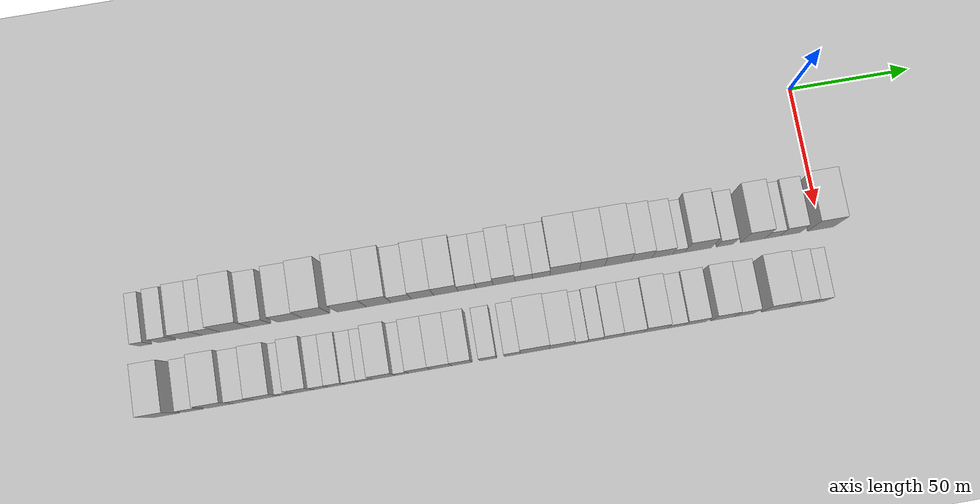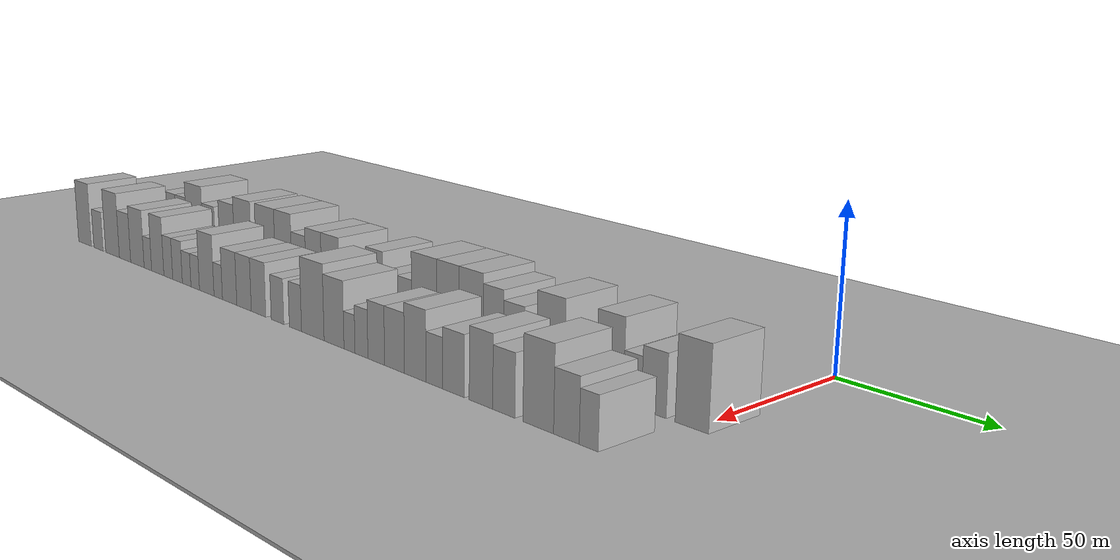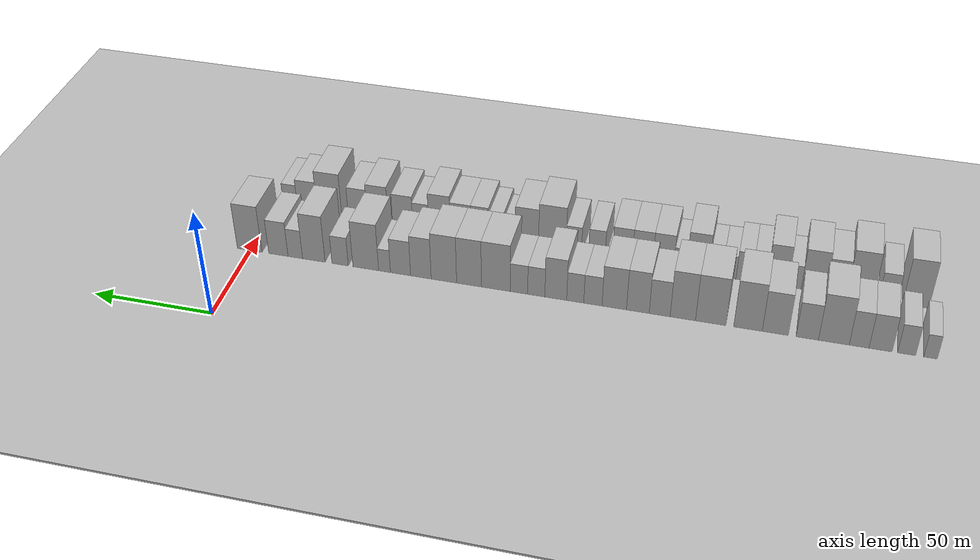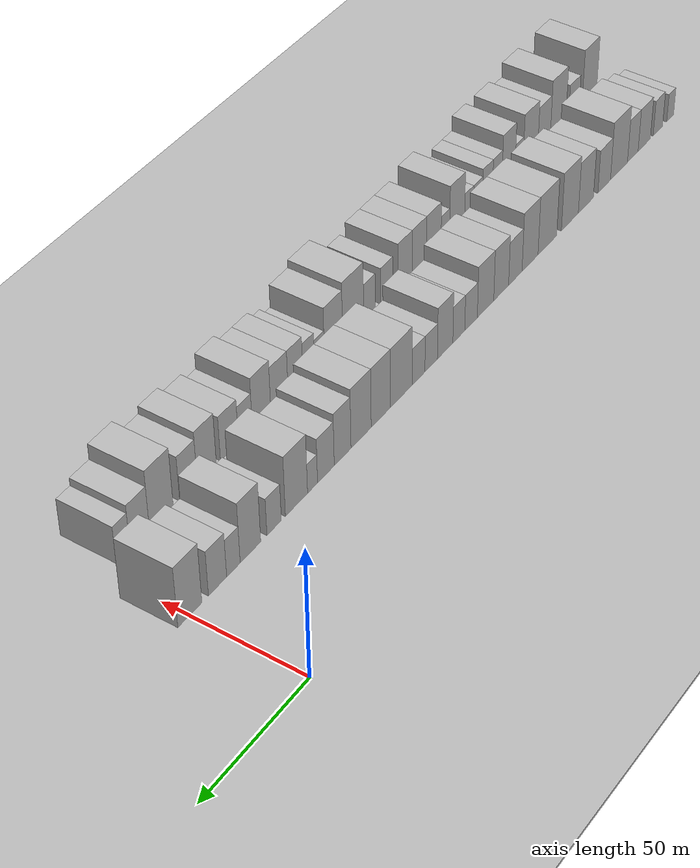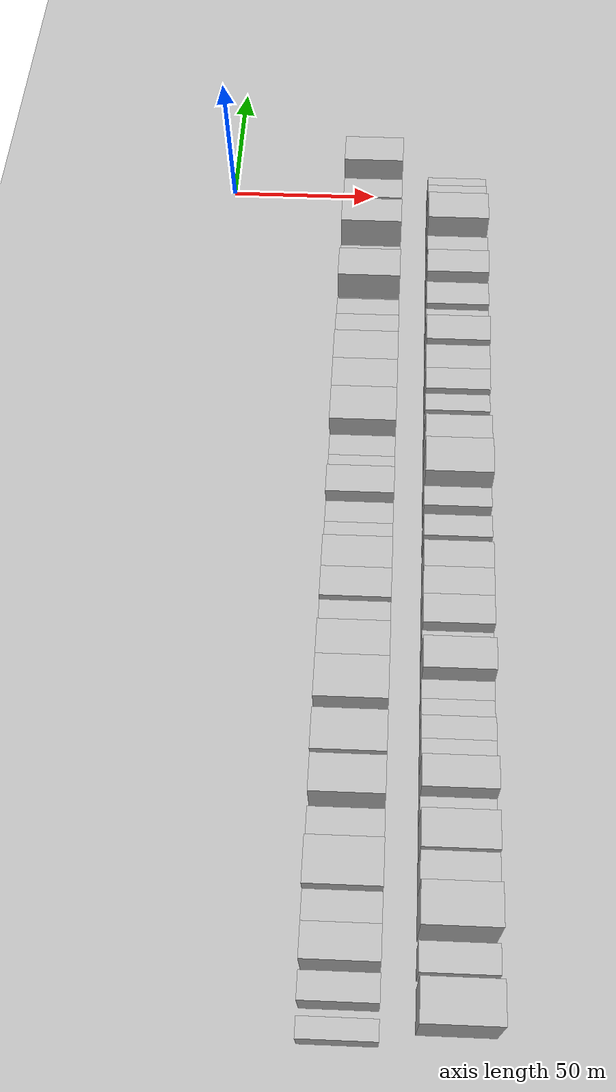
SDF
<sdf version="1.6">
 <world name="default">
  <include><name>ground_plane_1</name><uri>model://HANNAS_ground_plane</uri></include>
  <include>
   <name>ground_plane_2</name>
   <uri>model://HANNAS_ground_plane</uri>
   <pose>100 0 0  0 0 0</pose>
  </include>
  <model name="building_1">
   <static>1</static>
   <pose>50.0000 -275.5095 0 0.000000 0.000000 0.000000</pose>
   <link name="link">
    <pose>0 0 6.00 0 0 0</pose>
    <collision name="collision"><geometry><box><size>20.0000 4.9810 12.0000</size></box></geometry></collision>
    <visual name="visual">
     <cast_shadows>0</cast_shadows>
     <geometry><box><size>20.0000 4.9810 12.0000</size></box></geometry>
     <material>
      <script>
       <uri>model://HANNAS_wall/materials/scripts</uri>
       <uri>model://HANNAS_wall/materials/textures</uri>
       <name>vrc/HANNAS_wall</name>
      </script>
     </material>
    </visual>
   </link>
  </model>
  <model name="building_2">
   <static>1</static>
   <pose>50.0000 -266.6562 0 0.000000 0.000000 0.000000</pose>
   <link name="link">
    <pose>0 0 7.50 0 0 0</pose>
    <collision name="collision"><geometry><box><size>20.0000 6.7257 15.0000</size></box></geometry></collision>
    <visual name="visual">
     <cast_shadows>0</cast_shadows>
     <geometry><box><size>20.0000 6.7257 15.0000</size></box></geometry>
     <material>
      <script>
       <uri>model://HANNAS_wall/materials/scripts</uri>
       <uri>model://HANNAS_wall/materials/textures</uri>
       <name>vrc/HANNAS_wall</name>
      </script>
     </material>
    </visual>
   </link>
  </model>
  <model name="building_3">
   <static>1</static>
   <pose>50.0000 -256.9734 0 0.000000 0.000000 0.000000</pose>
   <link name="link">
    <pose>0 0 9.00 0 0 0</pose>
    <collision name="collision"><geometry><box><size>20.0000 8.6398 18.0000</size></box></geometry></collision>
    <visual name="visual">
     <cast_shadows>0</cast_shadows>
     <geometry><box><size>20.0000 8.6398 18.0000</size></box></geometry>
     <material>
      <script>
       <uri>model://HANNAS_wall/materials/scripts</uri>
       <uri>model://HANNAS_wall/materials/textures</uri>
       <name>vrc/HANNAS_wall</name>
      </script>
     </material>
    </visual>
   </link>
  </model>
  <model name="building_4">
   <static>1</static>
   <pose>50.0000 -248.9423 0 0.000000 0.000000 0.000000</pose>
   <link name="link">
    <pose>0 0 9.00 0 0 0</pose>
    <collision name="collision"><geometry><box><size>20.0000 7.4225 18.0000</size></box></geometry></collision>
    <visual name="visual">
     <cast_shadows>0</cast_shadows>
     <geometry><box><size>20.0000 7.4225 18.0000</size></box></geometry>
     <material>
      <script>
       <uri>model://HANNAS_wall/materials/scripts</uri>
       <uri>model://HANNAS_wall/materials/textures</uri>
       <name>vrc/HANNAS_wall</name>
      </script>
     </material>
    </visual>
   </link>
  </model>
  <model name="building_5">
   <static>1</static>
   <pose>50.0000 -239.3968 0 0.000000 0.000000 0.000000</pose>
   <link name="link">
    <pose>0 0 12.00 0 0 0</pose>
    <collision name="collision"><geometry><box><size>20.0000 11.6684 24.0000</size></box></geometry></collision>
    <visual name="visual">
     <cast_shadows>0</cast_shadows>
     <geometry><box><size>20.0000 11.6684 24.0000</size></box></geometry>
     <material>
      <script>
       <uri>model://HANNAS_wall/materials/scripts</uri>
       <uri>model://HANNAS_wall/materials/textures</uri>
       <name>vrc/HANNAS_wall</name>
      </script>
     </material>
    </visual>
   </link>
  </model>
  <model name="building_6">
   <static>1</static>
   <pose>50.0000 -229.3155 0 0.000000 0.000000 0.000000</pose>
   <link name="link">
    <pose>0 0 9.00 0 0 0</pose>
    <collision name="collision"><geometry><box><size>20.0000 8.4943 18.0000</size></box></geometry></collision>
    <visual name="visual">
     <cast_shadows>0</cast_shadows>
     <geometry><box><size>20.0000 8.4943 18.0000</size></box></geometry>
     <material>
      <script>
       <uri>model://HANNAS_wall/materials/scripts</uri>
       <uri>model://HANNAS_wall/materials/textures</uri>
       <name>vrc/HANNAS_wall</name>
      </script>
     </material>
    </visual>
   </link>
  </model>
  <model name="building_7">
   <static>1</static>
   <pose>50.0000 -217.0728 0 0.000000 0.000000 0.000000</pose>
   <link name="link">
    <pose>0 0 10.50 0 0 0</pose>
    <collision name="collision"><geometry><box><size>20.0000 9.9910 21.0000</size></box></geometry></collision>
    <visual name="visual">
     <cast_shadows>0</cast_shadows>
     <geometry><box><size>20.0000 9.9910 21.0000</size></box></geometry>
     <material>
      <script>
       <uri>model://HANNAS_wall/materials/scripts</uri>
       <uri>model://HANNAS_wall/materials/textures</uri>
       <name>vrc/HANNAS_wall</name>
      </script>
     </material>
    </visual>
   </link>
  </model>
  <model name="building_8">
   <static>1</static>
   <pose>50.0000 -206.5521 0 0.000000 0.000000 0.000000</pose>
   <link name="link">
    <pose>0 0 12.00 0 0 0</pose>
    <collision name="collision"><geometry><box><size>20.0000 11.0504 24.0000</size></box></geometry></collision>
    <visual name="visual">
     <cast_shadows>0</cast_shadows>
     <geometry><box><size>20.0000 11.0504 24.0000</size></box></geometry>
     <material>
      <script>
       <uri>model://HANNAS_wall/materials/scripts</uri>
       <uri>model://HANNAS_wall/materials/textures</uri>
       <name>vrc/HANNAS_wall</name>
      </script>
     </material>
    </visual>
   </link>
  </model>
  <model name="building_9">
   <static>1</static>
   <pose>50.0000 -192.0702 0 0.000000 0.000000 0.000000</pose>
   <link name="link">
    <pose>0 0 12.00 0 0 0</pose>
    <collision name="collision"><geometry><box><size>20.0000 11.9134 24.0000</size></box></geometry></collision>
    <visual name="visual">
     <cast_shadows>0</cast_shadows>
     <geometry><box><size>20.0000 11.9134 24.0000</size></box></geometry>
     <material>
      <script>
       <uri>model://HANNAS_wall/materials/scripts</uri>
       <uri>model://HANNAS_wall/materials/textures</uri>
       <name>vrc/HANNAS_wall</name>
      </script>
     </material>
    </visual>
   </link>
  </model>
  <model name="building_10">
   <static>1</static>
   <pose>50.0000 -181.1173 0 0.000000 0.000000 0.000000</pose>
   <link name="link">
    <pose>0 0 12.00 0 0 0</pose>
    <collision name="collision"><geometry><box><size>20.0000 9.9924 24.0000</size></box></geometry></collision>
    <visual name="visual">
     <cast_shadows>0</cast_shadows>
     <geometry><box><size>20.0000 9.9924 24.0000</size></box></geometry>
     <material>
      <script>
       <uri>model://HANNAS_wall/materials/scripts</uri>
       <uri>model://HANNAS_wall/materials/textures</uri>
       <name>vrc/HANNAS_wall</name>
      </script>
     </material>
    </visual>
   </link>
  </model>
  <model name="building_11">
   <static>1</static>
   <pose>50.0000 -171.9731 0 0.000000 0.000000 0.000000</pose>
   <link name="link">
    <pose>0 0 9.00 0 0 0</pose>
    <collision name="collision"><geometry><box><size>20.0000 8.2960 18.0000</size></box></geometry></collision>
    <visual name="visual">
     <cast_shadows>0</cast_shadows>
     <geometry><box><size>20.0000 8.2960 18.0000</size></box></geometry>
     <material>
      <script>
       <uri>model://HANNAS_wall/materials/scripts</uri>
       <uri>model://HANNAS_wall/materials/textures</uri>
       <name>vrc/HANNAS_wall</name>
      </script>
     </material>
    </visual>
   </link>
  </model>
  <model name="building_12">
   <static>1</static>
   <pose>50.0000 -163.3178 0 0.000000 0.000000 0.000000</pose>
   <link name="link">
    <pose>0 0 10.50 0 0 0</pose>
    <collision name="collision"><geometry><box><size>20.0000 9.0146 21.0000</size></box></geometry></collision>
    <visual name="visual">
     <cast_shadows>0</cast_shadows>
     <geometry><box><size>20.0000 9.0146 21.0000</size></box></geometry>
     <material>
      <script>
       <uri>model://HANNAS_wall/materials/scripts</uri>
       <uri>model://HANNAS_wall/materials/textures</uri>
       <name>vrc/HANNAS_wall</name>
      </script>
     </material>
    </visual>
   </link>
  </model>
  <model name="building_13">
   <static>1</static>
   <pose>50.0000 -153.9079 0 0.000000 0.000000 0.000000</pose>
   <link name="link">
    <pose>0 0 10.50 0 0 0</pose>
    <collision name="collision"><geometry><box><size>20.0000 9.8053 21.0000</size></box></geometry></collision>
    <visual name="visual">
     <cast_shadows>0</cast_shadows>
     <geometry><box><size>20.0000 9.8053 21.0000</size></box></geometry>
     <material>
      <script>
       <uri>model://HANNAS_wall/materials/scripts</uri>
       <uri>model://HANNAS_wall/materials/textures</uri>
       <name>vrc/HANNAS_wall</name>
      </script>
     </material>
    </visual>
   </link>
  </model>
  <model name="building_14">
   <static>1</static>
   <pose>50.0000 -145.3055 0 0.000000 0.000000 0.000000</pose>
   <link name="link">
    <pose>0 0 7.50 0 0 0</pose>
    <collision name="collision"><geometry><box><size>20.0000 7.3994 15.0000</size></box></geometry></collision>
    <visual name="visual">
     <cast_shadows>0</cast_shadows>
     <geometry><box><size>20.0000 7.3994 15.0000</size></box></geometry>
     <material>
      <script>
       <uri>model://HANNAS_wall/materials/scripts</uri>
       <uri>model://HANNAS_wall/materials/textures</uri>
       <name>vrc/HANNAS_wall</name>
      </script>
     </material>
    </visual>
   </link>
  </model>
  <model name="building_15">
   <static>1</static>
   <pose>50.0000 -138.1473 0 0.000000 0.000000 0.000000</pose>
   <link name="link">
    <pose>0 0 7.50 0 0 0</pose>
    <collision name="collision"><geometry><box><size>20.0000 6.9170 15.0000</size></box></geometry></collision>
    <visual name="visual">
     <cast_shadows>0</cast_shadows>
     <geometry><box><size>20.0000 6.9170 15.0000</size></box></geometry>
     <material>
      <script>
       <uri>model://HANNAS_wall/materials/scripts</uri>
       <uri>model://HANNAS_wall/materials/textures</uri>
       <name>vrc/HANNAS_wall</name>
      </script>
     </material>
    </visual>
   </link>
  </model>
  <model name="building_16">
   <static>1</static>
   <pose>50.0000 -130.2422 0 0.000000 0.000000 0.000000</pose>
   <link name="link">
    <pose>0 0 10.50 0 0 0</pose>
    <collision name="collision"><geometry><box><size>20.0000 8.8931 21.0000</size></box></geometry></collision>
    <visual name="visual">
     <cast_shadows>0</cast_shadows>
     <geometry><box><size>20.0000 8.8931 21.0000</size></box></geometry>
     <material>
      <script>
       <uri>model://HANNAS_wall/materials/scripts</uri>
       <uri>model://HANNAS_wall/materials/textures</uri>
       <name>vrc/HANNAS_wall</name>
      </script>
     </material>
    </visual>
   </link>
  </model>
  <model name="building_17">
   <static>1</static>
   <pose>50.0000 -122.2671 0 0.000000 0.000000 0.000000</pose>
   <link name="link">
    <pose>0 0 7.50 0 0 0</pose>
    <collision name="collision"><geometry><box><size>20.0000 7.0571 15.0000</size></box></geometry></collision>
    <visual name="visual">
     <cast_shadows>0</cast_shadows>
     <geometry><box><size>20.0000 7.0571 15.0000</size></box></geometry>
     <material>
      <script>
       <uri>model://HANNAS_wall/materials/scripts</uri>
       <uri>model://HANNAS_wall/materials/textures</uri>
       <name>vrc/HANNAS_wall</name>
      </script>
     </material>
    </visual>
   </link>
  </model>
  <model name="building_18">
   <static>1</static>
   <pose>50.0000 -115.1416 0 0.000000 0.000000 0.000000</pose>
   <link name="link">
    <pose>0 0 7.50 0 0 0</pose>
    <collision name="collision"><geometry><box><size>20.0000 7.1939 15.0000</size></box></geometry></collision>
    <visual name="visual">
     <cast_shadows>0</cast_shadows>
     <geometry><box><size>20.0000 7.1939 15.0000</size></box></geometry>
     <material>
      <script>
       <uri>model://HANNAS_wall/materials/scripts</uri>
       <uri>model://HANNAS_wall/materials/textures</uri>
       <name>vrc/HANNAS_wall</name>
      </script>
     </material>
    </visual>
   </link>
  </model>
  <model name="building_19">
   <static>1</static>
   <pose>50.0000 -105.5763 0 0.000000 0.000000 0.000000</pose>
   <link name="link">
    <pose>0 0 12.00 0 0 0</pose>
    <collision name="collision"><geometry><box><size>20.0000 11.9367 24.0000</size></box></geometry></collision>
    <visual name="visual">
     <cast_shadows>0</cast_shadows>
     <geometry><box><size>20.0000 11.9367 24.0000</size></box></geometry>
     <material>
      <script>
       <uri>model://HANNAS_wall/materials/scripts</uri>
       <uri>model://HANNAS_wall/materials/textures</uri>
       <name>vrc/HANNAS_wall</name>
      </script>
     </material>
    </visual>
   </link>
  </model>
  <model name="building_20">
   <static>1</static>
   <pose>50.0000 -94.4235 0 0.000000 0.000000 0.000000</pose>
   <link name="link">
    <pose>0 0 12.00 0 0 0</pose>
    <collision name="collision"><geometry><box><size>20.0000 10.3688 24.0000</size></box></geometry></collision>
    <visual name="visual">
     <cast_shadows>0</cast_shadows>
     <geometry><box><size>20.0000 10.3688 24.0000</size></box></geometry>
     <material>
      <script>
       <uri>model://HANNAS_wall/materials/scripts</uri>
       <uri>model://HANNAS_wall/materials/textures</uri>
       <name>vrc/HANNAS_wall</name>
      </script>
     </material>
    </visual>
   </link>
  </model>
  <model name="building_21">
   <static>1</static>
   <pose>50.0000 -83.8943 0 0.000000 0.000000 0.000000</pose>
   <link name="link">
    <pose>0 0 12.00 0 0 0</pose>
    <collision name="collision"><geometry><box><size>20.0000 10.6895 24.0000</size></box></geometry></collision>
    <visual name="visual">
     <cast_shadows>0</cast_shadows>
     <geometry><box><size>20.0000 10.6895 24.0000</size></box></geometry>
     <material>
      <script>
       <uri>model://HANNAS_wall/materials/scripts</uri>
       <uri>model://HANNAS_wall/materials/textures</uri>
       <name>vrc/HANNAS_wall</name>
      </script>
     </material>
    </visual>
   </link>
  </model>
  <model name="building_22">
   <static>1</static>
   <pose>50.0000 -74.1947 0 0.000000 0.000000 0.000000</pose>
   <link name="link">
    <pose>0 0 10.50 0 0 0</pose>
    <collision name="collision"><geometry><box><size>20.0000 8.7096 21.0000</size></box></geometry></collision>
    <visual name="visual">
     <cast_shadows>0</cast_shadows>
     <geometry><box><size>20.0000 8.7096 21.0000</size></box></geometry>
     <material>
      <script>
       <uri>model://HANNAS_wall/materials/scripts</uri>
       <uri>model://HANNAS_wall/materials/textures</uri>
       <name>vrc/HANNAS_wall</name>
      </script>
     </material>
    </visual>
   </link>
  </model>
  <model name="building_23">
   <static>1</static>
   <pose>50.0000 -65.5547 0 0.000000 0.000000 0.000000</pose>
   <link name="link">
    <pose>0 0 9.00 0 0 0</pose>
    <collision name="collision"><geometry><box><size>20.0000 8.5704 18.0000</size></box></geometry></collision>
    <visual name="visual">
     <cast_shadows>0</cast_shadows>
     <geometry><box><size>20.0000 8.5704 18.0000</size></box></geometry>
     <material>
      <script>
       <uri>model://HANNAS_wall/materials/scripts</uri>
       <uri>model://HANNAS_wall/materials/textures</uri>
       <name>vrc/HANNAS_wall</name>
      </script>
     </material>
    </visual>
   </link>
  </model>
  <model name="building_24">
   <static>1</static>
   <pose>50.0000 -58.7450 0 0.000000 0.000000 0.000000</pose>
   <link name="link">
    <pose>0 0 6.00 0 0 0</pose>
    <collision name="collision"><geometry><box><size>20.0000 5.0491 12.0000</size></box></geometry></collision>
    <visual name="visual">
     <cast_shadows>0</cast_shadows>
     <geometry><box><size>20.0000 5.0491 12.0000</size></box></geometry>
     <material>
      <script>
       <uri>model://HANNAS_wall/materials/scripts</uri>
       <uri>model://HANNAS_wall/materials/textures</uri>
       <name>vrc/HANNAS_wall</name>
      </script>
     </material>
    </visual>
   </link>
  </model>
  <model name="building_25">
   <static>1</static>
   <pose>50.0000 -50.6894 0 0.000000 0.000000 0.000000</pose>
   <link name="link">
    <pose>0 0 12.00 0 0 0</pose>
    <collision name="collision"><geometry><box><size>20.0000 11.0620 24.0000</size></box></geometry></collision>
    <visual name="visual">
     <cast_shadows>0</cast_shadows>
     <geometry><box><size>20.0000 11.0620 24.0000</size></box></geometry>
     <material>
      <script>
       <uri>model://HANNAS_wall/materials/scripts</uri>
       <uri>model://HANNAS_wall/materials/textures</uri>
       <name>vrc/HANNAS_wall</name>
      </script>
     </material>
    </visual>
   </link>
  </model>
  <model name="building_26">
   <static>1</static>
   <pose>50.0000 -39.6326 0 0.000000 0.000000 0.000000</pose>
   <link name="link">
    <pose>0 0 7.50 0 0 0</pose>
    <collision name="collision"><geometry><box><size>20.0000 7.0516 15.0000</size></box></geometry></collision>
    <visual name="visual">
     <cast_shadows>0</cast_shadows>
     <geometry><box><size>20.0000 7.0516 15.0000</size></box></geometry>
     <material>
      <script>
       <uri>model://HANNAS_wall/materials/scripts</uri>
       <uri>model://HANNAS_wall/materials/textures</uri>
       <name>vrc/HANNAS_wall</name>
      </script>
     </material>
    </visual>
   </link>
  </model>
  <model name="building_27">
   <static>1</static>
   <pose>50.0000 -28.1951 0 0.000000 0.000000 0.000000</pose>
   <link name="link">
    <pose>0 0 12.00 0 0 0</pose>
    <collision name="collision"><geometry><box><size>20.0000 9.8236 24.0000</size></box></geometry></collision>
    <visual name="visual">
     <cast_shadows>0</cast_shadows>
     <geometry><box><size>20.0000 9.8236 24.0000</size></box></geometry>
     <material>
      <script>
       <uri>model://HANNAS_wall/materials/scripts</uri>
       <uri>model://HANNAS_wall/materials/textures</uri>
       <name>vrc/HANNAS_wall</name>
      </script>
     </material>
    </visual>
   </link>
  </model>
  <model name="building_28">
   <static>1</static>
   <pose>50.0000 -20.1003 0 0.000000 0.000000 0.000000</pose>
   <link name="link">
    <pose>0 0 7.50 0 0 0</pose>
    <collision name="collision"><geometry><box><size>20.0000 6.3659 15.0000</size></box></geometry></collision>
    <visual name="visual">
     <cast_shadows>0</cast_shadows>
     <geometry><box><size>20.0000 6.3659 15.0000</size></box></geometry>
     <material>
      <script>
       <uri>model://HANNAS_wall/materials/scripts</uri>
       <uri>model://HANNAS_wall/materials/textures</uri>
       <name>vrc/HANNAS_wall</name>
      </script>
     </material>
    </visual>
   </link>
  </model>
  <model name="building_29">
   <static>1</static>
   <pose>50.0000 -12.6781 0 0.000000 0.000000 0.000000</pose>
   <link name="link">
    <pose>0 0 9.00 0 0 0</pose>
    <collision name="collision"><geometry><box><size>20.0000 8.4785 18.0000</size></box></geometry></collision>
    <visual name="visual">
     <cast_shadows>0</cast_shadows>
     <geometry><box><size>20.0000 8.4785 18.0000</size></box></geometry>
     <material>
      <script>
       <uri>model://HANNAS_wall/materials/scripts</uri>
       <uri>model://HANNAS_wall/materials/textures</uri>
       <name>vrc/HANNAS_wall</name>
      </script>
     </material>
    </visual>
   </link>
  </model>
  <model name="building_30">
   <static>1</static>
   <pose>50.0000 0.0246 0 0.000000 0.000000 0.000000</pose>
   <link name="link">
    <pose>0 0 12.00 0 0 0</pose>
    <collision name="collision"><geometry><box><size>20.0000 10.9269 24.0000</size></box></geometry></collision>
    <visual name="visual">
     <cast_shadows>0</cast_shadows>
     <geometry><box><size>20.0000 10.9269 24.0000</size></box></geometry>
     <material>
      <script>
       <uri>model://HANNAS_wall/materials/scripts</uri>
       <uri>model://HANNAS_wall/materials/textures</uri>
       <name>vrc/HANNAS_wall</name>
      </script>
     </material>
    </visual>
   </link>
  </model>
  <model name="building_61">
   <static>1</static>
   <pose>79.0000 -269.8927 0 0.000000 0.000000 0.000000</pose>
   <link name="link">
    <pose>0 0 12.00 0 0 0</pose>
    <collision name="collision"><geometry><box><size>20.0000 10.2146 24.0000</size></box></geometry></collision>
    <visual name="visual">
     <cast_shadows>0</cast_shadows>
     <geometry><box><size>20.0000 10.2146 24.0000</size></box></geometry>
     <material>
      <script>
       <uri>model://HANNAS_wall/materials/scripts</uri>
       <uri>model://HANNAS_wall/materials/textures</uri>
       <name>vrc/HANNAS_wall</name>
      </script>
     </material>
    </visual>
   </link>
  </model>
  <model name="building_62">
   <static>1</static>
   <pose>79.0000 -259.1659 0 0.000000 0.000000 0.000000</pose>
   <link name="link">
    <pose>0 0 7.50 0 0 0</pose>
    <collision name="collision"><geometry><box><size>20.0000 7.2391 15.0000</size></box></geometry></collision>
    <visual name="visual">
     <cast_shadows>0</cast_shadows>
     <geometry><box><size>20.0000 7.2391 15.0000</size></box></geometry>
     <material>
      <script>
       <uri>model://HANNAS_wall/materials/scripts</uri>
       <uri>model://HANNAS_wall/materials/textures</uri>
       <name>vrc/HANNAS_wall</name>
      </script>
     </material>
    </visual>
   </link>
  </model>
  <model name="building_63">
   <static>1</static>
   <pose>79.0000 -248.3276 0 0.000000 0.000000 0.000000</pose>
   <link name="link">
    <pose>0 0 12.00 0 0 0</pose>
    <collision name="collision"><geometry><box><size>20.0000 10.4375 24.0000</size></box></geometry></collision>
    <visual name="visual">
     <cast_shadows>0</cast_shadows>
     <geometry><box><size>20.0000 10.4375 24.0000</size></box></geometry>
     <material>
      <script>
       <uri>model://HANNAS_wall/materials/scripts</uri>
       <uri>model://HANNAS_wall/materials/textures</uri>
       <name>vrc/HANNAS_wall</name>
      </script>
     </material>
    </visual>
   </link>
  </model>
  <model name="building_64">
   <static>1</static>
   <pose>79.0000 -238.9294 0 0.000000 0.000000 0.000000</pose>
   <link name="link">
    <pose>0 0 9.00 0 0 0</pose>
    <collision name="collision"><geometry><box><size>20.0000 8.3587 18.0000</size></box></geometry></collision>
    <visual name="visual">
     <cast_shadows>0</cast_shadows>
     <geometry><box><size>20.0000 8.3587 18.0000</size></box></geometry>
     <material>
      <script>
       <uri>model://HANNAS_wall/materials/scripts</uri>
       <uri>model://HANNAS_wall/materials/textures</uri>
       <name>vrc/HANNAS_wall</name>
      </script>
     </material>
    </visual>
   </link>
  </model>
  <model name="building_65">
   <static>1</static>
   <pose>79.0000 -229.8993 0 0.000000 0.000000 0.000000</pose>
   <link name="link">
    <pose>0 0 10.50 0 0 0</pose>
    <collision name="collision"><geometry><box><size>20.0000 9.7016 21.0000</size></box></geometry></collision>
    <visual name="visual">
     <cast_shadows>0</cast_shadows>
     <geometry><box><size>20.0000 9.7016 21.0000</size></box></geometry>
     <material>
      <script>
       <uri>model://HANNAS_wall/materials/scripts</uri>
       <uri>model://HANNAS_wall/materials/textures</uri>
       <name>vrc/HANNAS_wall</name>
      </script>
     </material>
    </visual>
   </link>
  </model>
  <model name="building_66">
   <static>1</static>
   <pose>79.0000 -222.3982 0 0.000000 0.000000 0.000000</pose>
   <link name="link">
    <pose>0 0 6.00 0 0 0</pose>
    <collision name="collision"><geometry><box><size>20.0000 5.3005 12.0000</size></box></geometry></collision>
    <visual name="visual">
     <cast_shadows>0</cast_shadows>
     <geometry><box><size>20.0000 5.3005 12.0000</size></box></geometry>
     <material>
      <script>
       <uri>model://HANNAS_wall/materials/scripts</uri>
       <uri>model://HANNAS_wall/materials/textures</uri>
       <name>vrc/HANNAS_wall</name>
      </script>
     </material>
    </visual>
   </link>
  </model>
  <model name="building_67">
   <static>1</static>
   <pose>79.0000 -215.5142 0 0.000000 0.000000 0.000000</pose>
   <link name="link">
    <pose>0 0 10.50 0 0 0</pose>
    <collision name="collision"><geometry><box><size>20.0000 8.4676 21.0000</size></box></geometry></collision>
    <visual name="visual">
     <cast_shadows>0</cast_shadows>
     <geometry><box><size>20.0000 8.4676 21.0000</size></box></geometry>
     <material>
      <script>
       <uri>model://HANNAS_wall/materials/scripts</uri>
       <uri>model://HANNAS_wall/materials/textures</uri>
       <name>vrc/HANNAS_wall</name>
      </script>
     </material>
    </visual>
   </link>
  </model>
  <model name="building_68">
   <static>1</static>
   <pose>79.0000 -208.2749 0 0.000000 0.000000 0.000000</pose>
   <link name="link">
    <pose>0 0 7.50 0 0 0</pose>
    <collision name="collision"><geometry><box><size>20.0000 6.0110 15.0000</size></box></geometry></collision>
    <visual name="visual">
     <cast_shadows>0</cast_shadows>
     <geometry><box><size>20.0000 6.0110 15.0000</size></box></geometry>
     <material>
      <script>
       <uri>model://HANNAS_wall/materials/scripts</uri>
       <uri>model://HANNAS_wall/materials/textures</uri>
       <name>vrc/HANNAS_wall</name>
      </script>
     </material>
    </visual>
   </link>
  </model>
  <model name="building_69">
   <static>1</static>
   <pose>79.0000 -202.0723 0 0.000000 0.000000 0.000000</pose>
   <link name="link">
    <pose>0 0 7.50 0 0 0</pose>
    <collision name="collision"><geometry><box><size>20.0000 6.3940 15.0000</size></box></geometry></collision>
    <visual name="visual">
     <cast_shadows>0</cast_shadows>
     <geometry><box><size>20.0000 6.3940 15.0000</size></box></geometry>
     <material>
      <script>
       <uri>model://HANNAS_wall/materials/scripts</uri>
       <uri>model://HANNAS_wall/materials/textures</uri>
       <name>vrc/HANNAS_wall</name>
      </script>
     </material>
    </visual>
   </link>
  </model>
  <model name="building_70">
   <static>1</static>
   <pose>79.0000 -196.0567 0 0.000000 0.000000 0.000000</pose>
   <link name="link">
    <pose>0 0 6.00 0 0 0</pose>
    <collision name="collision"><geometry><box><size>20.0000 5.6374 12.0000</size></box></geometry></collision>
    <visual name="visual">
     <cast_shadows>0</cast_shadows>
     <geometry><box><size>20.0000 5.6374 12.0000</size></box></geometry>
     <material>
      <script>
       <uri>model://HANNAS_wall/materials/scripts</uri>
       <uri>model://HANNAS_wall/materials/textures</uri>
       <name>vrc/HANNAS_wall</name>
      </script>
     </material>
    </visual>
   </link>
  </model>
  <model name="building_71">
   <static>1</static>
   <pose>79.0000 -190.5009 0 0.000000 0.000000 0.000000</pose>
   <link name="link">
    <pose>0 0 6.00 0 0 0</pose>
    <collision name="collision"><geometry><box><size>20.0000 5.4742 12.0000</size></box></geometry></collision>
    <visual name="visual">
     <cast_shadows>0</cast_shadows>
     <geometry><box><size>20.0000 5.4742 12.0000</size></box></geometry>
     <material>
      <script>
       <uri>model://HANNAS_wall/materials/scripts</uri>
       <uri>model://HANNAS_wall/materials/textures</uri>
       <name>vrc/HANNAS_wall</name>
      </script>
     </material>
    </visual>
   </link>
  </model>
  <model name="building_72">
   <static>1</static>
   <pose>79.0000 -183.1885 0 0.000000 0.000000 0.000000</pose>
   <link name="link">
    <pose>0 0 10.50 0 0 0</pose>
    <collision name="collision"><geometry><box><size>20.0000 9.1504 21.0000</size></box></geometry></collision>
    <visual name="visual">
     <cast_shadows>0</cast_shadows>
     <geometry><box><size>20.0000 9.1504 21.0000</size></box></geometry>
     <material>
      <script>
       <uri>model://HANNAS_wall/materials/scripts</uri>
       <uri>model://HANNAS_wall/materials/textures</uri>
       <name>vrc/HANNAS_wall</name>
      </script>
     </material>
    </visual>
   </link>
  </model>
  <model name="building_73">
   <static>1</static>
   <pose>79.0000 -176.0142 0 0.000000 0.000000 0.000000</pose>
   <link name="link">
    <pose>0 0 6.00 0 0 0</pose>
    <collision name="collision"><geometry><box><size>20.0000 5.1982 12.0000</size></box></geometry></collision>
    <visual name="visual">
     <cast_shadows>0</cast_shadows>
     <geometry><box><size>20.0000 5.1982 12.0000</size></box></geometry>
     <material>
      <script>
       <uri>model://HANNAS_wall/materials/scripts</uri>
       <uri>model://HANNAS_wall/materials/textures</uri>
       <name>vrc/HANNAS_wall</name>
      </script>
     </material>
    </visual>
   </link>
  </model>
  <model name="building_74">
   <static>1</static>
   <pose>79.0000 -169.0858 0 0.000000 0.000000 0.000000</pose>
   <link name="link">
    <pose>0 0 9.00 0 0 0</pose>
    <collision name="collision"><geometry><box><size>20.0000 8.6585 18.0000</size></box></geometry></collision>
    <visual name="visual">
     <cast_shadows>0</cast_shadows>
     <geometry><box><size>20.0000 8.6585 18.0000</size></box></geometry>
     <material>
      <script>
       <uri>model://HANNAS_wall/materials/scripts</uri>
       <uri>model://HANNAS_wall/materials/textures</uri>
       <name>vrc/HANNAS_wall</name>
      </script>
     </material>
    </visual>
   </link>
  </model>
  <model name="building_75">
   <static>1</static>
   <pose>79.0000 -160.5002 0 0.000000 0.000000 0.000000</pose>
   <link name="link">
    <pose>0 0 9.00 0 0 0</pose>
    <collision name="collision"><geometry><box><size>20.0000 8.5128 18.0000</size></box></geometry></collision>
    <visual name="visual">
     <cast_shadows>0</cast_shadows>
     <geometry><box><size>20.0000 8.5128 18.0000</size></box></geometry>
     <material>
      <script>
       <uri>model://HANNAS_wall/materials/scripts</uri>
       <uri>model://HANNAS_wall/materials/textures</uri>
       <name>vrc/HANNAS_wall</name>
      </script>
     </material>
    </visual>
   </link>
  </model>
  <model name="building_76">
   <static>1</static>
   <pose>79.0000 -152.0977 0 0.000000 0.000000 0.000000</pose>
   <link name="link">
    <pose>0 0 9.00 0 0 0</pose>
    <collision name="collision"><geometry><box><size>20.0000 8.2921 18.0000</size></box></geometry></collision>
    <visual name="visual">
     <cast_shadows>0</cast_shadows>
     <geometry><box><size>20.0000 8.2921 18.0000</size></box></geometry>
     <material>
      <script>
       <uri>model://HANNAS_wall/materials/scripts</uri>
       <uri>model://HANNAS_wall/materials/textures</uri>
       <name>vrc/HANNAS_wall</name>
      </script>
     </material>
    </visual>
   </link>
  </model>
  <model name="building_77">
   <static>1</static>
   <pose>79.0000 -141.4776 0 0.000000 0.000000 0.000000</pose>
   <link name="link">
    <pose>0 0 7.50 0 0 0</pose>
    <collision name="collision"><geometry><box><size>20.0000 6.9481 15.0000</size></box></geometry></collision>
    <visual name="visual">
     <cast_shadows>0</cast_shadows>
     <geometry><box><size>20.0000 6.9481 15.0000</size></box></geometry>
     <material>
      <script>
       <uri>model://HANNAS_wall/materials/scripts</uri>
       <uri>model://HANNAS_wall/materials/textures</uri>
       <name>vrc/HANNAS_wall</name>
      </script>
     </material>
    </visual>
   </link>
  </model>
  <model name="building_78">
   <static>1</static>
   <pose>79.0000 -131.7456 0 0.000000 0.000000 0.000000</pose>
   <link name="link">
    <pose>0 0 7.50 0 0 0</pose>
    <collision name="collision"><geometry><box><size>20.0000 6.5158 15.0000</size></box></geometry></collision>
    <visual name="visual">
     <cast_shadows>0</cast_shadows>
     <geometry><box><size>20.0000 6.5158 15.0000</size></box></geometry>
     <material>
      <script>
       <uri>model://HANNAS_wall/materials/scripts</uri>
       <uri>model://HANNAS_wall/materials/textures</uri>
       <name>vrc/HANNAS_wall</name>
      </script>
     </material>
    </visual>
   </link>
  </model>
  <model name="building_79">
   <static>1</static>
   <pose>79.0000 -122.6422 0 0.000000 0.000000 0.000000</pose>
   <link name="link">
    <pose>0 0 12.00 0 0 0</pose>
    <collision name="collision"><geometry><box><size>20.0000 11.6911 24.0000</size></box></geometry></collision>
    <visual name="visual">
     <cast_shadows>0</cast_shadows>
     <geometry><box><size>20.0000 11.6911 24.0000</size></box></geometry>
     <material>
      <script>
       <uri>model://HANNAS_wall/materials/scripts</uri>
       <uri>model://HANNAS_wall/materials/textures</uri>
       <name>vrc/HANNAS_wall</name>
      </script>
     </material>
    </visual>
   </link>
  </model>
  <model name="building_80">
   <static>1</static>
   <pose>79.0000 -111.8338 0 0.000000 0.000000 0.000000</pose>
   <link name="link">
    <pose>0 0 10.50 0 0 0</pose>
    <collision name="collision"><geometry><box><size>20.0000 9.9256 21.0000</size></box></geometry></collision>
    <visual name="visual">
     <cast_shadows>0</cast_shadows>
     <geometry><box><size>20.0000 9.9256 21.0000</size></box></geometry>
     <material>
      <script>
       <uri>model://HANNAS_wall/materials/scripts</uri>
       <uri>model://HANNAS_wall/materials/textures</uri>
       <name>vrc/HANNAS_wall</name>
      </script>
     </material>
    </visual>
   </link>
  </model>
  <model name="building_81">
   <static>1</static>
   <pose>79.0000 -104.1825 0 0.000000 0.000000 0.000000</pose>
   <link name="link">
    <pose>0 0 6.00 0 0 0</pose>
    <collision name="collision"><geometry><box><size>20.0000 5.3770 12.0000</size></box></geometry></collision>
    <visual name="visual">
     <cast_shadows>0</cast_shadows>
     <geometry><box><size>20.0000 5.3770 12.0000</size></box></geometry>
     <material>
      <script>
       <uri>model://HANNAS_wall/materials/scripts</uri>
       <uri>model://HANNAS_wall/materials/textures</uri>
       <name>vrc/HANNAS_wall</name>
      </script>
     </material>
    </visual>
   </link>
  </model>
  <model name="building_82">
   <static>1</static>
   <pose>79.0000 -98.4220 0 0.000000 0.000000 0.000000</pose>
   <link name="link">
    <pose>0 0 7.50 0 0 0</pose>
    <collision name="collision"><geometry><box><size>20.0000 6.1439 15.0000</size></box></geometry></collision>
    <visual name="visual">
     <cast_shadows>0</cast_shadows>
     <geometry><box><size>20.0000 6.1439 15.0000</size></box></geometry>
     <material>
      <script>
       <uri>model://HANNAS_wall/materials/scripts</uri>
       <uri>model://HANNAS_wall/materials/textures</uri>
       <name>vrc/HANNAS_wall</name>
      </script>
     </material>
    </visual>
   </link>
  </model>
  <model name="building_83">
   <static>1</static>
   <pose>79.0000 -91.4619 0 0.000000 0.000000 0.000000</pose>
   <link name="link">
    <pose>0 0 9.00 0 0 0</pose>
    <collision name="collision"><geometry><box><size>20.0000 7.7763 18.0000</size></box></geometry></collision>
    <visual name="visual">
     <cast_shadows>0</cast_shadows>
     <geometry><box><size>20.0000 7.7763 18.0000</size></box></geometry>
     <material>
      <script>
       <uri>model://HANNAS_wall/materials/scripts</uri>
       <uri>model://HANNAS_wall/materials/textures</uri>
       <name>vrc/HANNAS_wall</name>
      </script>
     </material>
    </visual>
   </link>
  </model>
  <model name="building_84">
   <static>1</static>
   <pose>79.0000 -83.0889 0 0.000000 0.000000 0.000000</pose>
   <link name="link">
    <pose>0 0 9.00 0 0 0</pose>
    <collision name="collision"><geometry><box><size>20.0000 8.9697 18.0000</size></box></geometry></collision>
    <visual name="visual">
     <cast_shadows>0</cast_shadows>
     <geometry><box><size>20.0000 8.9697 18.0000</size></box></geometry>
     <material>
      <script>
       <uri>model://HANNAS_wall/materials/scripts</uri>
       <uri>model://HANNAS_wall/materials/textures</uri>
       <name>vrc/HANNAS_wall</name>
      </script>
     </material>
    </visual>
   </link>
  </model>
  <model name="building_85">
   <static>1</static>
   <pose>79.0000 -73.9062 0 0.000000 0.000000 0.000000</pose>
   <link name="link">
    <pose>0 0 10.50 0 0 0</pose>
    <collision name="collision"><geometry><box><size>20.0000 9.3957 21.0000</size></box></geometry></collision>
    <visual name="visual">
     <cast_shadows>0</cast_shadows>
     <geometry><box><size>20.0000 9.3957 21.0000</size></box></geometry>
     <material>
      <script>
       <uri>model://HANNAS_wall/materials/scripts</uri>
       <uri>model://HANNAS_wall/materials/textures</uri>
       <name>vrc/HANNAS_wall</name>
      </script>
     </material>
    </visual>
   </link>
  </model>
  <model name="building_86">
   <static>1</static>
   <pose>79.0000 -65.7011 0 0.000000 0.000000 0.000000</pose>
   <link name="link">
    <pose>0 0 7.50 0 0 0</pose>
    <collision name="collision"><geometry><box><size>20.0000 7.0146 15.0000</size></box></geometry></collision>
    <visual name="visual">
     <cast_shadows>0</cast_shadows>
     <geometry><box><size>20.0000 7.0146 15.0000</size></box></geometry>
     <material>
      <script>
       <uri>model://HANNAS_wall/materials/scripts</uri>
       <uri>model://HANNAS_wall/materials/textures</uri>
       <name>vrc/HANNAS_wall</name>
      </script>
     </material>
    </visual>
   </link>
  </model>
  <model name="building_87">
   <static>1</static>
   <pose>79.0000 -57.7352 0 0.000000 0.000000 0.000000</pose>
   <link name="link">
    <pose>0 0 9.00 0 0 0</pose>
    <collision name="collision"><geometry><box><size>20.0000 8.9172 18.0000</size></box></geometry></collision>
    <visual name="visual">
     <cast_shadows>0</cast_shadows>
     <geometry><box><size>20.0000 8.9172 18.0000</size></box></geometry>
     <material>
      <script>
       <uri>model://HANNAS_wall/materials/scripts</uri>
       <uri>model://HANNAS_wall/materials/textures</uri>
       <name>vrc/HANNAS_wall</name>
      </script>
     </material>
    </visual>
   </link>
  </model>
  <model name="building_88">
   <static>1</static>
   <pose>79.0000 -46.6405 0 0.000000 0.000000 0.000000</pose>
   <link name="link">
    <pose>0 0 10.50 0 0 0</pose>
    <collision name="collision"><geometry><box><size>20.0000 9.2721 21.0000</size></box></geometry></collision>
    <visual name="visual">
     <cast_shadows>0</cast_shadows>
     <geometry><box><size>20.0000 9.2721 21.0000</size></box></geometry>
     <material>
      <script>
       <uri>model://HANNAS_wall/materials/scripts</uri>
       <uri>model://HANNAS_wall/materials/textures</uri>
       <name>vrc/HANNAS_wall</name>
      </script>
     </material>
    </visual>
   </link>
  </model>
  <model name="building_89">
   <static>1</static>
   <pose>79.0000 -37.7856 0 0.000000 0.000000 0.000000</pose>
   <link name="link">
    <pose>0 0 9.00 0 0 0</pose>
    <collision name="collision"><geometry><box><size>20.0000 8.4377 18.0000</size></box></geometry></collision>
    <visual name="visual">
     <cast_shadows>0</cast_shadows>
     <geometry><box><size>20.0000 8.4377 18.0000</size></box></geometry>
     <material>
      <script>
       <uri>model://HANNAS_wall/materials/scripts</uri>
       <uri>model://HANNAS_wall/materials/textures</uri>
       <name>vrc/HANNAS_wall</name>
      </script>
     </material>
    </visual>
   </link>
  </model>
  <model name="building_90">
   <static>1</static>
   <pose>79.0000 -25.0192 0 0.000000 0.000000 0.000000</pose>
   <link name="link">
    <pose>0 0 12.00 0 0 0</pose>
    <collision name="collision"><geometry><box><size>20.0000 11.0951 24.0000</size></box></geometry></collision>
    <visual name="visual">
     <cast_shadows>0</cast_shadows>
     <geometry><box><size>20.0000 11.0951 24.0000</size></box></geometry>
     <material>
      <script>
       <uri>model://HANNAS_wall/materials/scripts</uri>
       <uri>model://HANNAS_wall/materials/textures</uri>
       <name>vrc/HANNAS_wall</name>
      </script>
     </material>
    </visual>
   </link>
  </model>
  <model name="building_91">
   <static>1</static>
   <pose>79.0000 -15.0174 0 0.000000 0.000000 0.000000</pose>
   <link name="link">
    <pose>0 0 9.00 0 0 0</pose>
    <collision name="collision"><geometry><box><size>20.0000 8.9084 18.0000</size></box></geometry></collision>
    <visual name="visual">
     <cast_shadows>0</cast_shadows>
     <geometry><box><size>20.0000 8.9084 18.0000</size></box></geometry>
     <material>
      <script>
       <uri>model://HANNAS_wall/materials/scripts</uri>
       <uri>model://HANNAS_wall/materials/textures</uri>
       <name>vrc/HANNAS_wall</name>
      </script>
     </material>
    </visual>
   </link>
  </model>
  <model name="building_92">
   <static>1</static>
   <pose>79.0000 -7.3787 0 0.000000 0.000000 0.000000</pose>
   <link name="link">
    <pose>0 0 7.50 0 0 0</pose>
    <collision name="collision"><geometry><box><size>20.0000 6.3689 15.0000</size></box></geometry></collision>
    <visual name="visual">
     <cast_shadows>0</cast_shadows>
     <geometry><box><size>20.0000 6.3689 15.0000</size></box></geometry>
     <material>
      <script>
       <uri>model://HANNAS_wall/materials/scripts</uri>
       <uri>model://HANNAS_wall/materials/textures</uri>
       <name>vrc/HANNAS_wall</name>
      </script>
     </material>
    </visual>
   </link>
  </model>
 </world>
</sdf>
